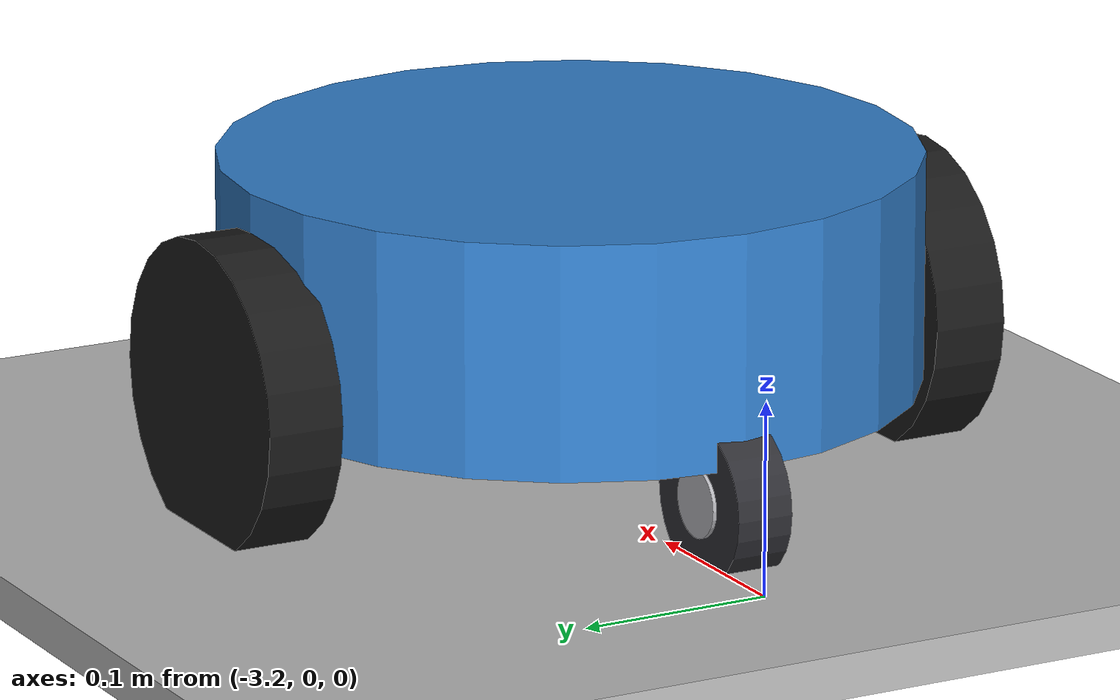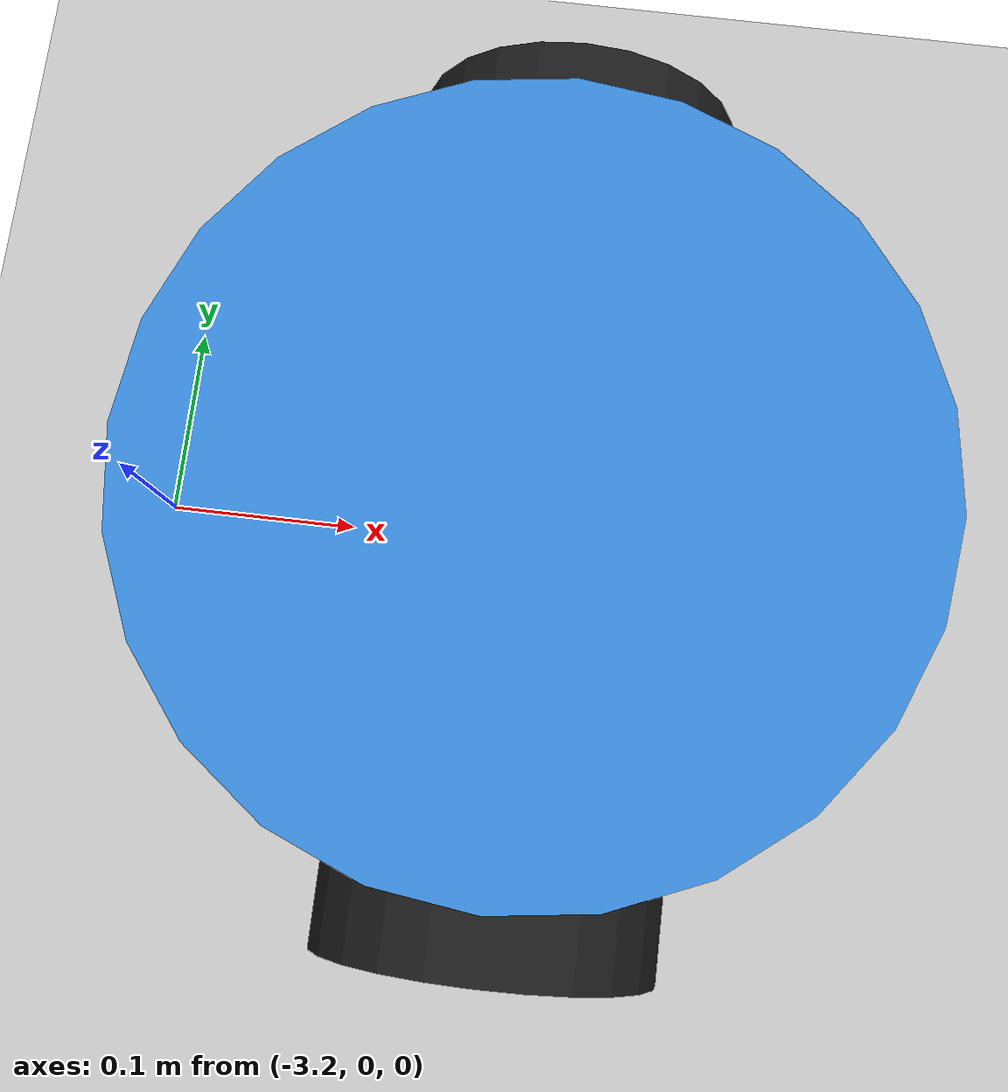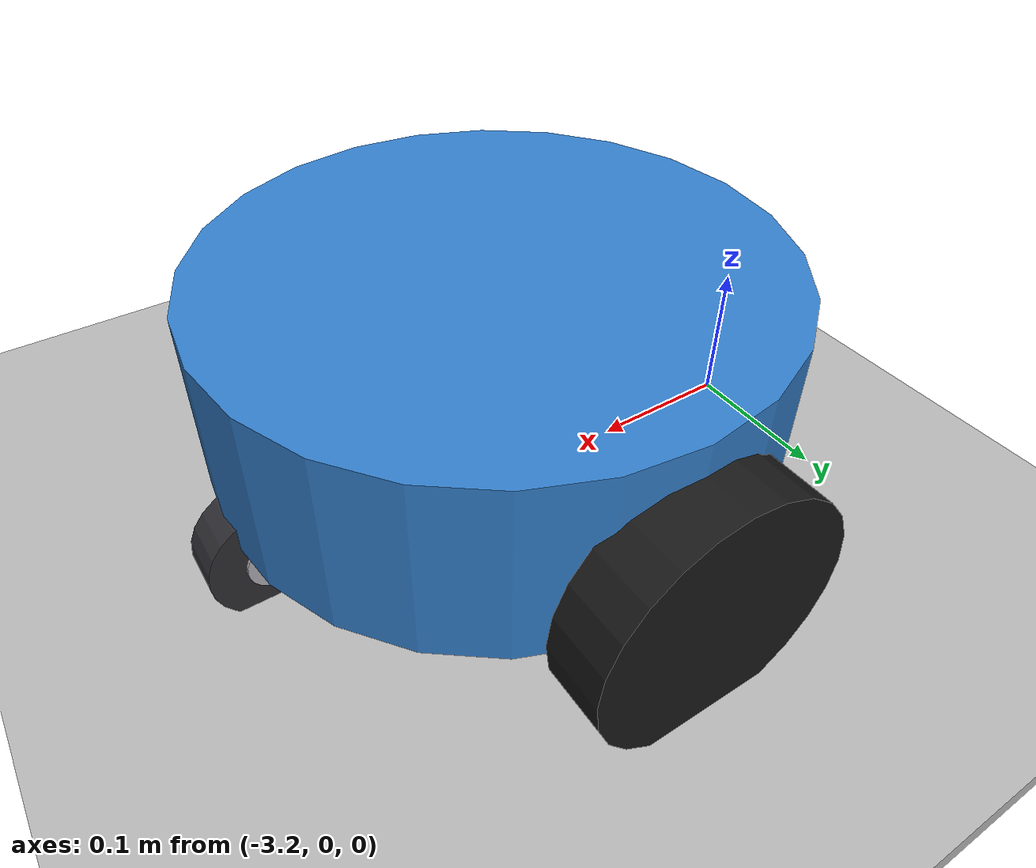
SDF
<sdf version="1.6">
 <world name="combined">
  <model name="ceiling">
   <pose>-11.25 -2.97 3 0 3.14159 1.5708</pose>
   <static>true</static>
   <link name="link">
    <visual name="visual">
     <geometry><plane><normal>0 0 1</normal><size>49.5 22.5</size></plane></geometry>
     <material>
      <script>
       <uri>file://media/materials/scripts/</uri>
       <uri>file://media/materials/textures/</uri>
       <name>ServiceSim/Ceiling</name>
      </script>
     </material>
    </visual>
   </link>
  </model>
  <model name="floor">
   <pose>-11.25 -2.97 -0.001 0 0 1.5708</pose>
   <static>true</static>
   <link name="link">
    <visual name="visual">
     <geometry><plane><normal>0 0 1</normal><size>49.5 22.5</size></plane></geometry>
     <material>
      <script>
       <uri>file://media/materials/scripts/</uri>
       <uri>file://media/materials/textures/</uri>
       <name>ServiceSim/Hallway</name>
      </script>
     </material>
    </visual>
    <collision name="collision">
     <geometry><plane><normal>0 0 1</normal><size>49.5 22.5</size></plane></geometry>
     <surface><friction><ode><mu>1</mu><mu2>1</mu2></ode></friction></surface>
    </collision>
   </link>
  </model>
  <include><pose>-3 1.83697e-16 0.12 0 0 -3.67321e-06</pose><uri>model://robot</uri></include>
 </world>
</sdf>
